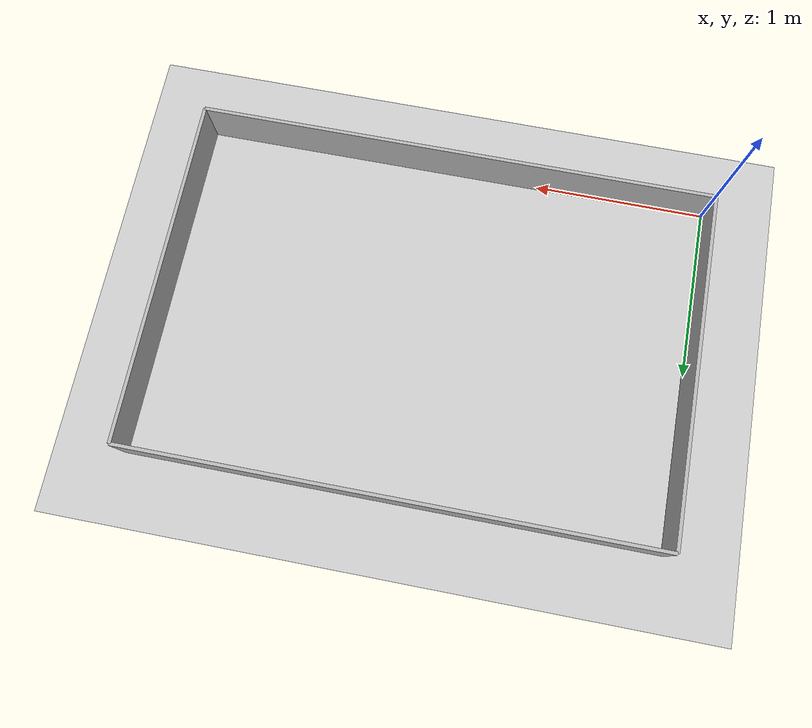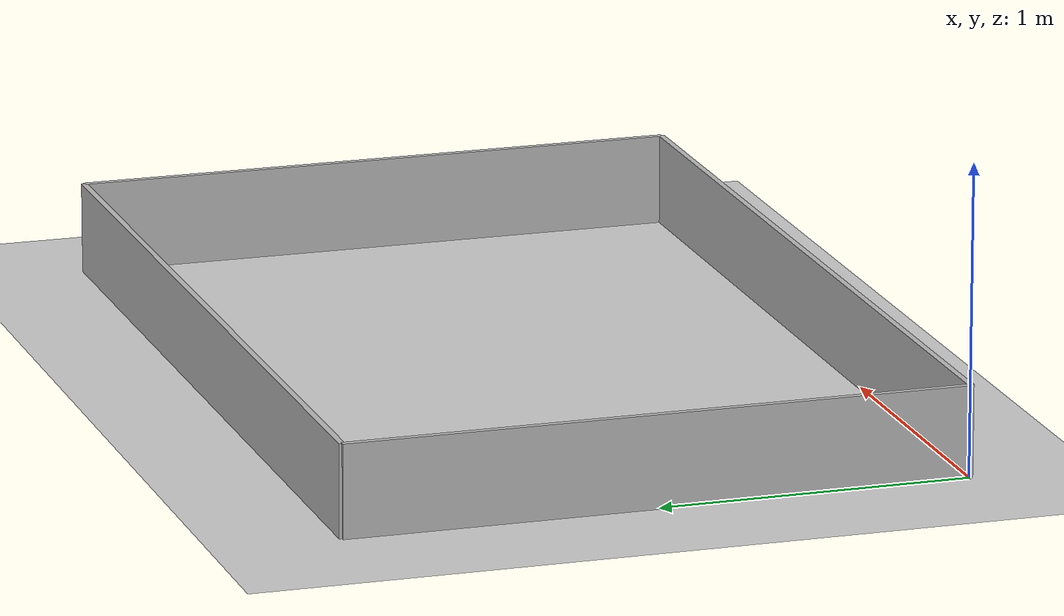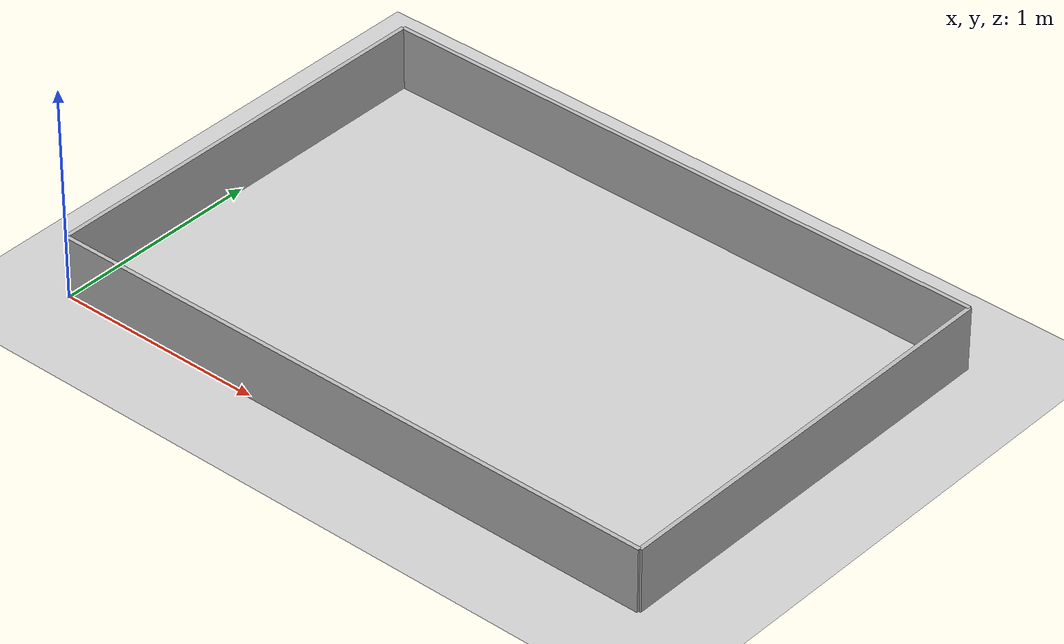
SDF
<?xml version="1.0" ?>
<sdf version="1.6">
  <world name="bordered_world">

    <!-- Define wall height -->
    <plugin name="wall_height_plugin" filename="libWallHeightPlugin.so">
      <wall_height>0.3</wall_height>
    </plugin>

    <!-- Ground Plane -->
    <include>
      <uri>model://ground_plane</uri>
    </include>

    <!-- Light Source -->
    <include>
      <uri>model://sun</uri>
    </include>

    <!-- Walls -->
    <model name="wall_north">
      <static>true</static>
      <link name="link">
        <collision name="collision">
          <geometry>
            <box>
              <size>3 0.02 0.3</size>
            </box>
          </geometry>
          <collide_bitmask>0</collide_bitmask>
        </collision>
        <visual name="visual">
          <geometry>
            <box>
              <size>3 0.02 0.3</size>
            </box>
            <material>
              <ambient>0.7 0.7 0.7 1</ambient>
            </material>
          </geometry>
        </visual>
        <pose>1.5 2 0.15 0 0 0</pose>
      </link>
    </model>

    <model name="wall_south">
      <static>true</static>
      <link name="link">
        <collision name="collision">
          <geometry>
            <box>
              <size>3 0.02 0.3</size>
            </box>
          </geometry>
          <collide_bitmask>0</collide_bitmask>
        </collision>
        <visual name="visual">
          <geometry>
            <box>
              <size>3 0.02 0.3</size>
            </box>
            <material>
              <ambient>0.7 0.7 0.7 1</ambient>
            </material>
          </geometry>
        </visual>
        <pose>1.5 0 0.15 0 0 0</pose>
      </link>
    </model>

    <model name="wall_east">
      <static>true</static>
      <link name="link">
        <collision name="collision">
          <geometry>
            <box>
              <size>0.02 2 0.3</size>
            </box>
          </geometry>
          <collide_bitmask>0</collide_bitmask>
        </collision>
        <visual name="visual">
          <geometry>
            <box>
              <size>0.02 2 0.3</size>
            </box>
            <material>
              <ambient>0.7 0.7 0.7 1</ambient>
            </material>
          </geometry>
        </visual>
        <pose>3 1 0.15 0 0 0</pose>
      </link>
    </model>

    <model name="wall_west">
      <static>true</static>
      <link name="link">
        <collision name="collision">
          <geometry>
            <box>
              <size>0.02 2 0.3</size>
            </box>
          </geometry>
          <collide_bitmask>0</collide_bitmask>
        </collision>
        <visual name="visual">
          <geometry>
            <box>
              <size>0.02 2 0.3</size>
            </box>
            <material>
              <ambient>0.7 0.7 0.7 1</ambient>
            </material>
          </geometry>
        </visual>
        <pose>0 1 0.15 0 0 0</pose>
      </link>
    </model>

    <!-- Spotlight -->
    <light name="spotlight" type="spot">
      <pose>2.7 0.5 1.0 0 0 0</pose>
      <diffuse>1.0 0.8 0.6 1</diffuse>
      <specular>1.0 0.8 0.6 1</specular>
      <attenuation>
        <range>10.0</range>
        <constant>0.5</constant>
        <linear>0.01</linear>
        <quadratic>0.001</quadratic>
      </attenuation>
      <direction>0 0 -1</direction>
      <spot>
        <inner_angle>0.1</inner_angle>
        <outer_angle>0.4</outer_angle>
        <falloff>0.5</falloff>
      </spot>
    </light>

    <!-- Spotlight -->
    <light name="spotlight2" type="spot">
      <pose>0.4 1.6 1.0 0 0 0</pose>
      <diffuse>1.0 0.8 0.6 1</diffuse>
      <specular>1.0 0.8 0.6 1</specular>
      <attenuation>
        <range>10.0</range>
        <constant>0.5</constant>
        <linear>0.01</linear>
        <quadratic>0.001</quadratic>
      </attenuation>
      <direction>0 0 -1</direction>
      <spot>
        <inner_angle>0.1</inner_angle>
        <outer_angle>0.4</outer_angle>
        <falloff>0.5</falloff>
      </spot>
    </light>

    <gui fullscreen='0'>
      <camera name='user_camera'>
        <pose>2.2356 -2.30977 4.18347 0 0.987643 1.5722</pose>
        <view_controller>orbit</view_controller>
        <projection_type>perspective</projection_type>
      </camera>
    </gui>

  </world>
</sdf>
